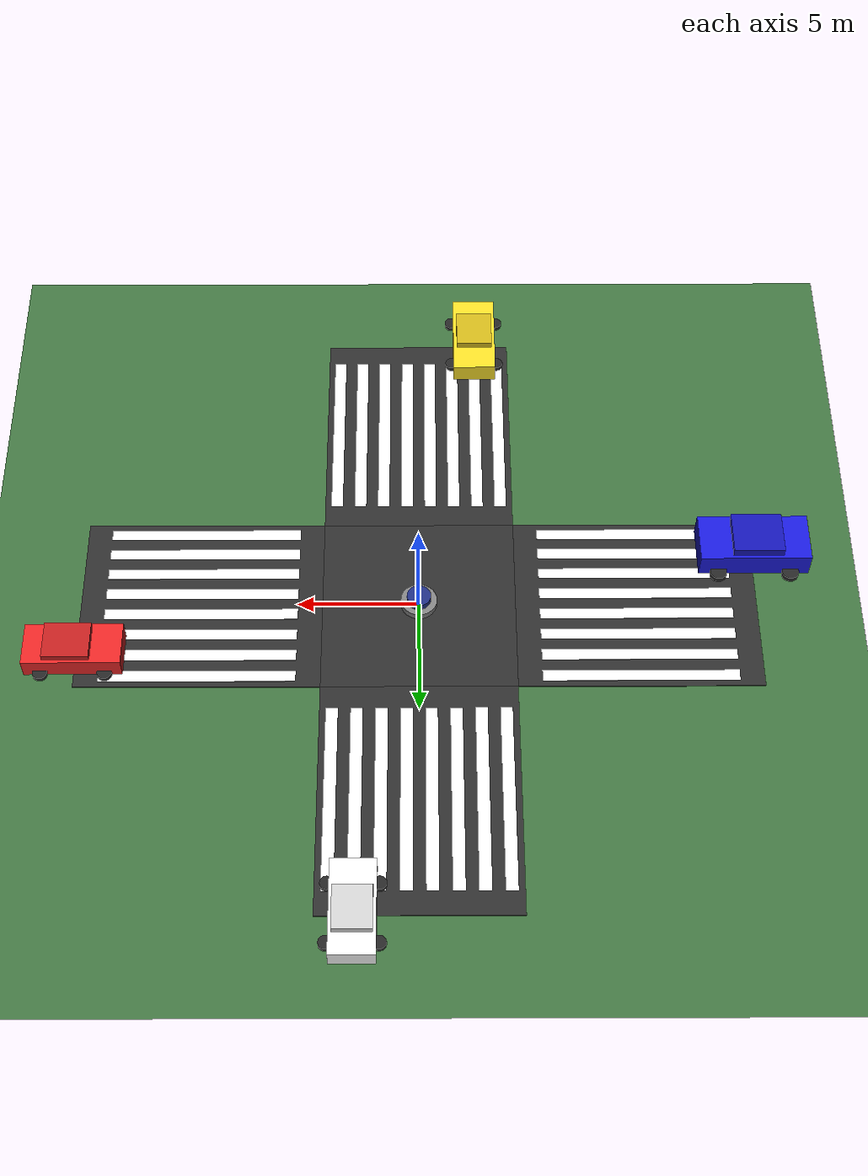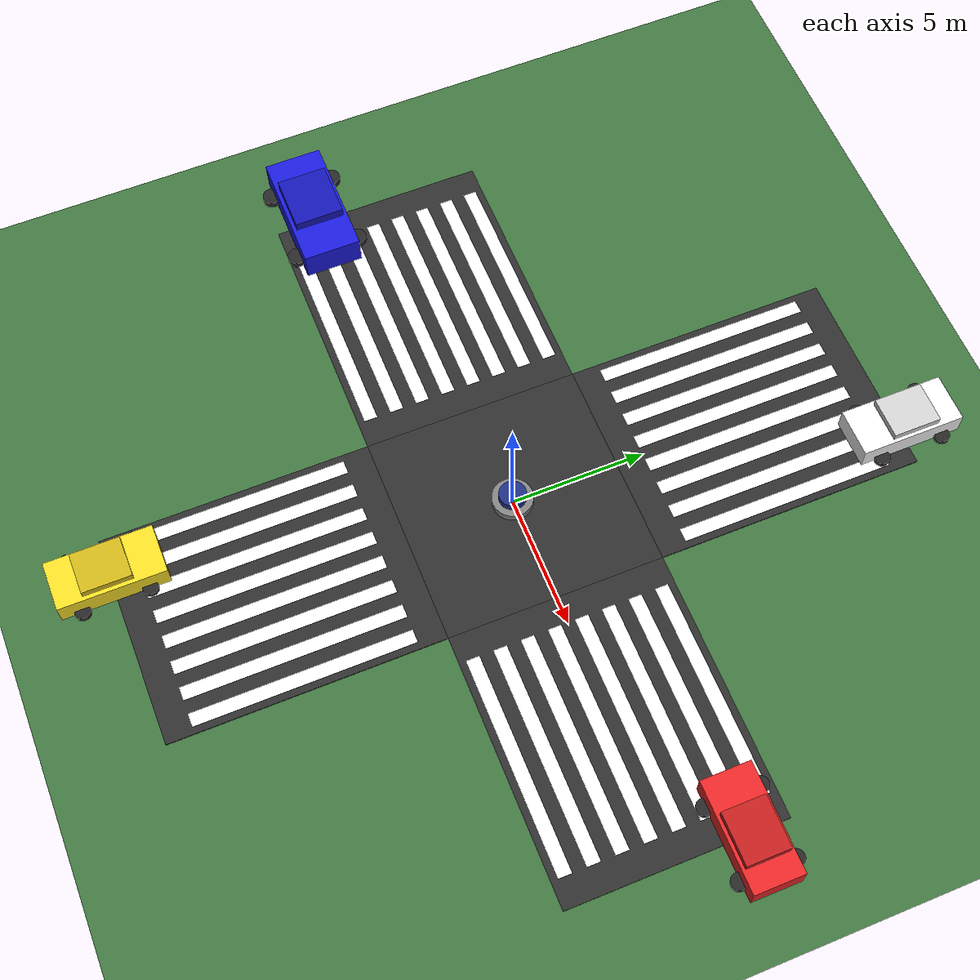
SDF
<?xml version="1.0" ?>
<sdf version="1.6">
  <world name="traffic_intersection">
    <physics type="ode">
      <max_step_size>0.001</max_step_size>
      <real_time_factor>1.0</real_time_factor>
      <real_time_update_rate>1000</real_time_update_rate>
    </physics>

    <!-- 削弱重力：10倍降低，减少手臂下垂，使 Gazebo 与 RViz2 运动同步 -->
    <gravity>0 0 -0.98</gravity>

    <light type="directional" name="sun_light">
      <cast_shadows>true</cast_shadows>
      <pose>0 0 15 0 0 0</pose>
      <diffuse>1 1 1 1</diffuse>
      <specular>0.5 0.5 0.5 0.5</specular>
      <attenuation>
        <range>1000</range>
        <constant>0.9</constant>
        <linear>0.01</linear>
        <quadratic>0.001</quadratic>
      </attenuation>
      <direction>-0.5 0.1 -0.9</direction>
    </light>

    <!-- 草地 -->
    <model name="ground_plane">
      <static>true</static>
      <link name="link">
        <collision name="collision"><geometry><plane><normal>0 0 1</normal><size>80 80</size></plane></geometry></collision>
        <visual name="visual"><geometry><plane><normal>0 0 1</normal><size>80 80</size></plane></geometry>
          <material><ambient>0.2 0.4 0.2 1</ambient><diffuse>0.25 0.45 0.25 1</diffuse></material></visual>
      </link>
    </model>

    <!-- 路口中心区域 8x8m（与路同宽） -->
    <model name="intersection_center">
      <static>true</static>
      <link name="surface">
        <pose>0 0 0.03 0 0 0</pose>
        <visual name="visual"><geometry><box><size>8 8 0.06</size></box></geometry>
          <material><ambient>0.12 0.12 0.12 1</ambient><diffuse>0.18 0.18 0.18 1</diffuse></material></visual>
        <collision name="collision"><geometry><box><size>8 8 0.06</size></box></geometry></collision>
      </link>
    </model>

    <!-- 北段路 (X:4到14) -->
    <model name="road_north">
      <static>true</static>
      <link name="surface">
        <pose>9 0 0.03 0 0 0</pose>
        <visual name="visual"><geometry><box><size>10 8 0.06</size></box></geometry>
          <material><ambient>0.12 0.12 0.12 1</ambient><diffuse>0.18 0.18 0.18 1</diffuse></material></visual>
        <collision name="collision"><geometry><box><size>10 8 0.06</size></box></geometry></collision>
      </link>
    </model>

    <!-- 南段路 (X:-14到-4) -->
    <model name="road_south">
      <static>true</static>
      <link name="surface">
        <pose>-9 0 0.03 0 0 0</pose>
        <visual name="visual"><geometry><box><size>10 8 0.06</size></box></geometry>
          <material><ambient>0.12 0.12 0.12 1</ambient><diffuse>0.18 0.18 0.18 1</diffuse></material></visual>
        <collision name="collision"><geometry><box><size>10 8 0.06</size></box></geometry></collision>
      </link>
    </model>

    <!-- 东段路 (Y:4到14) -->
    <model name="road_east">
      <static>true</static>
      <link name="surface">
        <pose>0 9 0.03 0 0 1.5708</pose>
        <visual name="visual"><geometry><box><size>10 8 0.06</size></box></geometry>
          <material><ambient>0.12 0.12 0.12 1</ambient><diffuse>0.18 0.18 0.18 1</diffuse></material></visual>
        <collision name="collision"><geometry><box><size>10 8 0.06</size></box></geometry></collision>
      </link>
    </model>

    <!-- 西段路 (Y:-14到-4) -->
    <model name="road_west">
      <static>true</static>
      <link name="surface">
        <pose>0 -9 0.03 0 0 1.5708</pose>
        <visual name="visual"><geometry><box><size>10 8 0.06</size></box></geometry>
          <material><ambient>0.12 0.12 0.12 1</ambient><diffuse>0.18 0.18 0.18 1</diffuse></material></visual>
        <collision name="collision"><geometry><box><size>10 8 0.06</size></box></geometry></collision>
      </link>
    </model>
    <!-- 北侧斑马线 (条纹∥南北路, 覆盖全路宽Y:-3.5到+3.5) -->
    <model name="zebra_north">
      <static>true</static>
      <pose>9 0 0.065 0 0 0</pose>
      <link name="s1"><pose>0 -3.5 0 0 0 0</pose><visual name="visual"><geometry><box><size>8.0 0.5 0.01</size></box></geometry><material><ambient>1 1 1 1</ambient><diffuse>1 1 1 1</diffuse></material></visual></link>
      <link name="s2"><pose>0 -2.5 0 0 0 0</pose><visual name="visual"><geometry><box><size>8.0 0.5 0.01</size></box></geometry><material><ambient>1 1 1 1</ambient><diffuse>1 1 1 1</diffuse></material></visual></link>
      <link name="s3"><pose>0 -1.5 0 0 0 0</pose><visual name="visual"><geometry><box><size>8.0 0.5 0.01</size></box></geometry><material><ambient>1 1 1 1</ambient><diffuse>1 1 1 1</diffuse></material></visual></link>
      <link name="s4"><pose>0 -0.5 0 0 0 0</pose><visual name="visual"><geometry><box><size>8.0 0.5 0.01</size></box></geometry><material><ambient>1 1 1 1</ambient><diffuse>1 1 1 1</diffuse></material></visual></link>
      <link name="s5"><pose>0  0.5 0 0 0 0</pose><visual name="visual"><geometry><box><size>8.0 0.5 0.01</size></box></geometry><material><ambient>1 1 1 1</ambient><diffuse>1 1 1 1</diffuse></material></visual></link>
      <link name="s6"><pose>0  1.5 0 0 0 0</pose><visual name="visual"><geometry><box><size>8.0 0.5 0.01</size></box></geometry><material><ambient>1 1 1 1</ambient><diffuse>1 1 1 1</diffuse></material></visual></link>
      <link name="s7"><pose>0  2.5 0 0 0 0</pose><visual name="visual"><geometry><box><size>8.0 0.5 0.01</size></box></geometry><material><ambient>1 1 1 1</ambient><diffuse>1 1 1 1</diffuse></material></visual></link>
      <link name="s8"><pose>0  3.5 0 0 0 0</pose><visual name="visual"><geometry><box><size>8.0 0.5 0.01</size></box></geometry><material><ambient>1 1 1 1</ambient><diffuse>1 1 1 1</diffuse></material></visual></link>
    </model>

    <!-- 南侧斑马线 -->
    <model name="zebra_south">
      <static>true</static>
      <pose>-9 0 0.065 0 0 0</pose>
      <link name="s1"><pose>0 -3.5 0 0 0 0</pose><visual name="visual"><geometry><box><size>8.0 0.5 0.01</size></box></geometry><material><ambient>1 1 1 1</ambient><diffuse>1 1 1 1</diffuse></material></visual></link>
      <link name="s2"><pose>0 -2.5 0 0 0 0</pose><visual name="visual"><geometry><box><size>8.0 0.5 0.01</size></box></geometry><material><ambient>1 1 1 1</ambient><diffuse>1 1 1 1</diffuse></material></visual></link>
      <link name="s3"><pose>0 -1.5 0 0 0 0</pose><visual name="visual"><geometry><box><size>8.0 0.5 0.01</size></box></geometry><material><ambient>1 1 1 1</ambient><diffuse>1 1 1 1</diffuse></material></visual></link>
      <link name="s4"><pose>0 -0.5 0 0 0 0</pose><visual name="visual"><geometry><box><size>8.0 0.5 0.01</size></box></geometry><material><ambient>1 1 1 1</ambient><diffuse>1 1 1 1</diffuse></material></visual></link>
      <link name="s5"><pose>0  0.5 0 0 0 0</pose><visual name="visual"><geometry><box><size>8.0 0.5 0.01</size></box></geometry><material><ambient>1 1 1 1</ambient><diffuse>1 1 1 1</diffuse></material></visual></link>
      <link name="s6"><pose>0  1.5 0 0 0 0</pose><visual name="visual"><geometry><box><size>8.0 0.5 0.01</size></box></geometry><material><ambient>1 1 1 1</ambient><diffuse>1 1 1 1</diffuse></material></visual></link>
      <link name="s7"><pose>0  2.5 0 0 0 0</pose><visual name="visual"><geometry><box><size>8.0 0.5 0.01</size></box></geometry><material><ambient>1 1 1 1</ambient><diffuse>1 1 1 1</diffuse></material></visual></link>
      <link name="s8"><pose>0  3.5 0 0 0 0</pose><visual name="visual"><geometry><box><size>8.0 0.5 0.01</size></box></geometry><material><ambient>1 1 1 1</ambient><diffuse>1 1 1 1</diffuse></material></visual></link>
    </model>
    <!-- 东侧斑马线 (条纹∥东西路, 覆盖全路宽X:-3.5到+3.5) -->
    <model name="zebra_east">
      <static>true</static>
      <pose>0 9 0.065 0 0 0</pose>
      <link name="s1"><pose>-3.5 0 0 0 0 0</pose><visual name="visual"><geometry><box><size>0.5 8.0 0.01</size></box></geometry><material><ambient>1 1 1 1</ambient><diffuse>1 1 1 1</diffuse></material></visual></link>
      <link name="s2"><pose>-2.5 0 0 0 0 0</pose><visual name="visual"><geometry><box><size>0.5 8.0 0.01</size></box></geometry><material><ambient>1 1 1 1</ambient><diffuse>1 1 1 1</diffuse></material></visual></link>
      <link name="s3"><pose>-1.5 0 0 0 0 0</pose><visual name="visual"><geometry><box><size>0.5 8.0 0.01</size></box></geometry><material><ambient>1 1 1 1</ambient><diffuse>1 1 1 1</diffuse></material></visual></link>
      <link name="s4"><pose>-0.5 0 0 0 0 0</pose><visual name="visual"><geometry><box><size>0.5 8.0 0.01</size></box></geometry><material><ambient>1 1 1 1</ambient><diffuse>1 1 1 1</diffuse></material></visual></link>
      <link name="s5"><pose> 0.5 0 0 0 0 0</pose><visual name="visual"><geometry><box><size>0.5 8.0 0.01</size></box></geometry><material><ambient>1 1 1 1</ambient><diffuse>1 1 1 1</diffuse></material></visual></link>
      <link name="s6"><pose> 1.5 0 0 0 0 0</pose><visual name="visual"><geometry><box><size>0.5 8.0 0.01</size></box></geometry><material><ambient>1 1 1 1</ambient><diffuse>1 1 1 1</diffuse></material></visual></link>
      <link name="s7"><pose> 2.5 0 0 0 0 0</pose><visual name="visual"><geometry><box><size>0.5 8.0 0.01</size></box></geometry><material><ambient>1 1 1 1</ambient><diffuse>1 1 1 1</diffuse></material></visual></link>
      <link name="s8"><pose> 3.5 0 0 0 0 0</pose><visual name="visual"><geometry><box><size>0.5 8.0 0.01</size></box></geometry><material><ambient>1 1 1 1</ambient><diffuse>1 1 1 1</diffuse></material></visual></link>
    </model>

    <!-- 西侧斑马线 -->
    <model name="zebra_west">
      <static>true</static>
      <pose>0 -9 0.065 0 0 0</pose>
      <link name="s1"><pose>-3.5 0 0 0 0 0</pose><visual name="visual"><geometry><box><size>0.5 8.0 0.01</size></box></geometry><material><ambient>1 1 1 1</ambient><diffuse>1 1 1 1</diffuse></material></visual></link>
      <link name="s2"><pose>-2.5 0 0 0 0 0</pose><visual name="visual"><geometry><box><size>0.5 8.0 0.01</size></box></geometry><material><ambient>1 1 1 1</ambient><diffuse>1 1 1 1</diffuse></material></visual></link>
      <link name="s3"><pose>-1.5 0 0 0 0 0</pose><visual name="visual"><geometry><box><size>0.5 8.0 0.01</size></box></geometry><material><ambient>1 1 1 1</ambient><diffuse>1 1 1 1</diffuse></material></visual></link>
      <link name="s4"><pose>-0.5 0 0 0 0 0</pose><visual name="visual"><geometry><box><size>0.5 8.0 0.01</size></box></geometry><material><ambient>1 1 1 1</ambient><diffuse>1 1 1 1</diffuse></material></visual></link>
      <link name="s5"><pose> 0.5 0 0 0 0 0</pose><visual name="visual"><geometry><box><size>0.5 8.0 0.01</size></box></geometry><material><ambient>1 1 1 1</ambient><diffuse>1 1 1 1</diffuse></material></visual></link>
      <link name="s6"><pose> 1.5 0 0 0 0 0</pose><visual name="visual"><geometry><box><size>0.5 8.0 0.01</size></box></geometry><material><ambient>1 1 1 1</ambient><diffuse>1 1 1 1</diffuse></material></visual></link>
      <link name="s7"><pose> 2.5 0 0 0 0 0</pose><visual name="visual"><geometry><box><size>0.5 8.0 0.01</size></box></geometry><material><ambient>1 1 1 1</ambient><diffuse>1 1 1 1</diffuse></material></visual></link>
      <link name="s8"><pose> 3.5 0 0 0 0 0</pose><visual name="visual"><geometry><box><size>0.5 8.0 0.01</size></box></geometry><material><ambient>1 1 1 1</ambient><diffuse>1 1 1 1</diffuse></material></visual></link>
    </model>

    <!-- 交警站台 -->
    <model name="police_platform">
      <static>true</static>
      <pose>0 0 0.06 0 0 0</pose>
      <link name="base">
        <pose>0 0 0.15 0 0 0</pose>
        <visual name="visual"><geometry><cylinder><radius>0.75</radius><length>0.3</length></cylinder></geometry>
          <material><ambient>0.4 0.4 0.4 1</ambient><diffuse>0.5 0.5 0.5 1</diffuse></material></visual>
        <collision name="collision"><geometry><cylinder><radius>0.75</radius><length>0.3</length></cylinder></geometry></collision>
      </link>
      <link name="top">
        <pose>0 0 0.45 0 0 0</pose>
        <visual name="visual"><geometry><cylinder><radius>0.5</radius><length>0.3</length></cylinder></geometry>
          <material><ambient>0.1 0.15 0.4 1</ambient><diffuse>0.12 0.18 0.5 1</diffuse></material></visual>
        <collision name="collision"><geometry><cylinder><radius>0.5</radius><length>0.3</length></cylinder></geometry></collision>
      </link>
    </model>

    <!-- 红色轿车 (北) -->
    <model name="car_red"><static>true</static><pose>14 2.5 0 0 0 0</pose>
      <link name="body"><pose>0 0 0.55 0 0 0</pose>
        <visual name="lower"><geometry><box><size>4.0 1.85 0.9</size></box></geometry><material><ambient>0.8 0.1 0.1 1</ambient><diffuse>0.9 0.15 0.15 1</diffuse></material></visual>
        <visual name="roof"><geometry><box><size>1.9 1.6 0.5</size></box></geometry><pose>0.2 0 0.5 0 0 0</pose><material><ambient>0.65 0.08 0.08 1</ambient><diffuse>0.75 0.12 0.12 1</diffuse></material></visual>
        <collision name="collision"><geometry><box><size>4.0 1.85 0.9</size></box></geometry></collision></link>
      <link name="w_fl"><pose>1.3 1.0 0.3 0 0 0</pose><visual name="visual"><geometry><cylinder><radius>0.3</radius><length>0.2</length></cylinder></geometry><material><ambient>0.1 0.1 0.1 1</ambient><diffuse>0.15 0.15 0.15 1</diffuse></material></visual></link>
      <link name="w_fr"><pose>1.3 -1.0 0.3 0 0 0</pose><visual name="visual"><geometry><cylinder><radius>0.3</radius><length>0.2</length></cylinder></geometry><material><ambient>0.1 0.1 0.1 1</ambient><diffuse>0.15 0.15 0.15 1</diffuse></material></visual></link>
      <link name="w_rl"><pose>-1.3 1.0 0.3 0 0 0</pose><visual name="visual"><geometry><cylinder><radius>0.3</radius><length>0.2</length></cylinder></geometry><material><ambient>0.1 0.1 0.1 1</ambient><diffuse>0.15 0.15 0.15 1</diffuse></material></visual></link>
      <link name="w_rr"><pose>-1.3 -1.0 0.3 0 0 0</pose><visual name="visual"><geometry><cylinder><radius>0.3</radius><length>0.2</length></cylinder></geometry><material><ambient>0.1 0.1 0.1 1</ambient><diffuse>0.15 0.15 0.15 1</diffuse></material></visual></link>
    </model>

    <!-- 蓝色SUV (南) -->
    <model name="car_blue_suv"><static>true</static><pose>-14 -2.5 0 0 0 3.1416</pose>
      <link name="body"><pose>0 0 0.7 0 0 0</pose>
        <visual name="lower"><geometry><box><size>4.6 2.15 1.1</size></box></geometry><material><ambient>0.08 0.08 0.65 1</ambient><diffuse>0.1 0.1 0.85 1</diffuse></material></visual>
        <visual name="roof"><geometry><box><size>2.1 1.85 0.6</size></box></geometry><pose>0.1 0 0.6 0 0 0</pose><material><ambient>0.06 0.06 0.5 1</ambient><diffuse>0.08 0.08 0.7 1</diffuse></material></visual>
        <collision name="collision"><geometry><box><size>4.6 2.15 1.1</size></box></geometry></collision></link>
      <link name="w_fl"><pose>1.5 1.2 0.35 0 0 0</pose><visual name="visual"><geometry><cylinder><radius>0.35</radius><length>0.24</length></cylinder></geometry><material><ambient>0.1 0.1 0.1 1</ambient><diffuse>0.15 0.15 0.15 1</diffuse></material></visual></link>
      <link name="w_fr"><pose>1.5 -1.2 0.35 0 0 0</pose><visual name="visual"><geometry><cylinder><radius>0.35</radius><length>0.24</length></cylinder></geometry><material><ambient>0.1 0.1 0.1 1</ambient><diffuse>0.15 0.15 0.15 1</diffuse></material></visual></link>
      <link name="w_rl"><pose>-1.5 1.2 0.35 0 0 0</pose><visual name="visual"><geometry><cylinder><radius>0.35</radius><length>0.24</length></cylinder></geometry><material><ambient>0.1 0.1 0.1 1</ambient><diffuse>0.15 0.15 0.15 1</diffuse></material></visual></link>
      <link name="w_rr"><pose>-1.5 -1.2 0.35 0 0 0</pose><visual name="visual"><geometry><cylinder><radius>0.35</radius><length>0.24</length></cylinder></geometry><material><ambient>0.1 0.1 0.1 1</ambient><diffuse>0.15 0.15 0.15 1</diffuse></material></visual></link>
    </model>

    <!-- 白色轿车 (东) -->
    <model name="car_white"><static>true</static><pose>2.5 14 0 0 0 1.5708</pose>
      <link name="body"><pose>0 0 0.55 0 0 0</pose>
        <visual name="lower"><geometry><box><size>3.9 1.8 0.85</size></box></geometry><material><ambient>0.85 0.85 0.85 1</ambient><diffuse>0.95 0.95 0.95 1</diffuse></material></visual>
        <visual name="roof"><geometry><box><size>1.8 1.55 0.5</size></box></geometry><pose>0.15 0 0.45 0 0 0</pose><material><ambient>0.7 0.7 0.7 1</ambient><diffuse>0.8 0.8 0.8 1</diffuse></material></visual>
        <collision name="collision"><geometry><box><size>3.9 1.8 0.85</size></box></geometry></collision></link>
      <link name="w_fl"><pose>1.2 1.0 0.28 0 0 0</pose><visual name="visual"><geometry><cylinder><radius>0.28</radius><length>0.2</length></cylinder></geometry><material><ambient>0.1 0.1 0.1 1</ambient><diffuse>0.15 0.15 0.15 1</diffuse></material></visual></link>
      <link name="w_fr"><pose>1.2 -1.0 0.28 0 0 0</pose><visual name="visual"><geometry><cylinder><radius>0.28</radius><length>0.2</length></cylinder></geometry><material><ambient>0.1 0.1 0.1 1</ambient><diffuse>0.15 0.15 0.15 1</diffuse></material></visual></link>
      <link name="w_rl"><pose>-1.2 1.0 0.28 0 0 0</pose><visual name="visual"><geometry><cylinder><radius>0.28</radius><length>0.2</length></cylinder></geometry><material><ambient>0.1 0.1 0.1 1</ambient><diffuse>0.15 0.15 0.15 1</diffuse></material></visual></link>
      <link name="w_rr"><pose>-1.2 -1.0 0.28 0 0 0</pose><visual name="visual"><geometry><cylinder><radius>0.28</radius><length>0.2</length></cylinder></geometry><material><ambient>0.1 0.1 0.1 1</ambient><diffuse>0.15 0.15 0.15 1</diffuse></material></visual></link>
    </model>

    <!-- 黄色出租车 (西) -->
    <model name="car_yellow"><static>true</static><pose>-2.5 -14 0 0 0 -1.5708</pose>
      <link name="body"><pose>0 0 0.55 0 0 0</pose>
        <visual name="lower"><geometry><box><size>3.9 1.85 0.85</size></box></geometry><material><ambient>0.9 0.8 0.1 1</ambient><diffuse>0.95 0.85 0.15 1</diffuse></material></visual>
        <visual name="roof"><geometry><box><size>1.8 1.55 0.5</size></box></geometry><pose>0.1 0 0.45 0 0 0</pose><material><ambient>0.7 0.6 0.08 1</ambient><diffuse>0.8 0.7 0.1 1</diffuse></material></visual>
        <collision name="collision"><geometry><box><size>3.9 1.85 0.85</size></box></geometry></collision></link>
      <link name="w_fl"><pose>1.2 1.0 0.28 0 0 0</pose><visual name="visual"><geometry><cylinder><radius>0.28</radius><length>0.2</length></cylinder></geometry><material><ambient>0.1 0.1 0.1 1</ambient><diffuse>0.15 0.15 0.15 1</diffuse></material></visual></link>
      <link name="w_fr"><pose>1.2 -1.0 0.28 0 0 0</pose><visual name="visual"><geometry><cylinder><radius>0.28</radius><length>0.2</length></cylinder></geometry><material><ambient>0.1 0.1 0.1 1</ambient><diffuse>0.15 0.15 0.15 1</diffuse></material></visual></link>
      <link name="w_rl"><pose>-1.2 1.0 0.28 0 0 0</pose><visual name="visual"><geometry><cylinder><radius>0.28</radius><length>0.2</length></cylinder></geometry><material><ambient>0.1 0.1 0.1 1</ambient><diffuse>0.15 0.15 0.15 1</diffuse></material></visual></link>
      <link name="w_rr"><pose>-1.2 -1.0 0.28 0 0 0</pose><visual name="visual"><geometry><cylinder><radius>0.28</radius><length>0.2</length></cylinder></geometry><material><ambient>0.1 0.1 0.1 1</ambient><diffuse>0.15 0.15 0.15 1</diffuse></material></visual></link>
    </model>

  </world>
</sdf>
